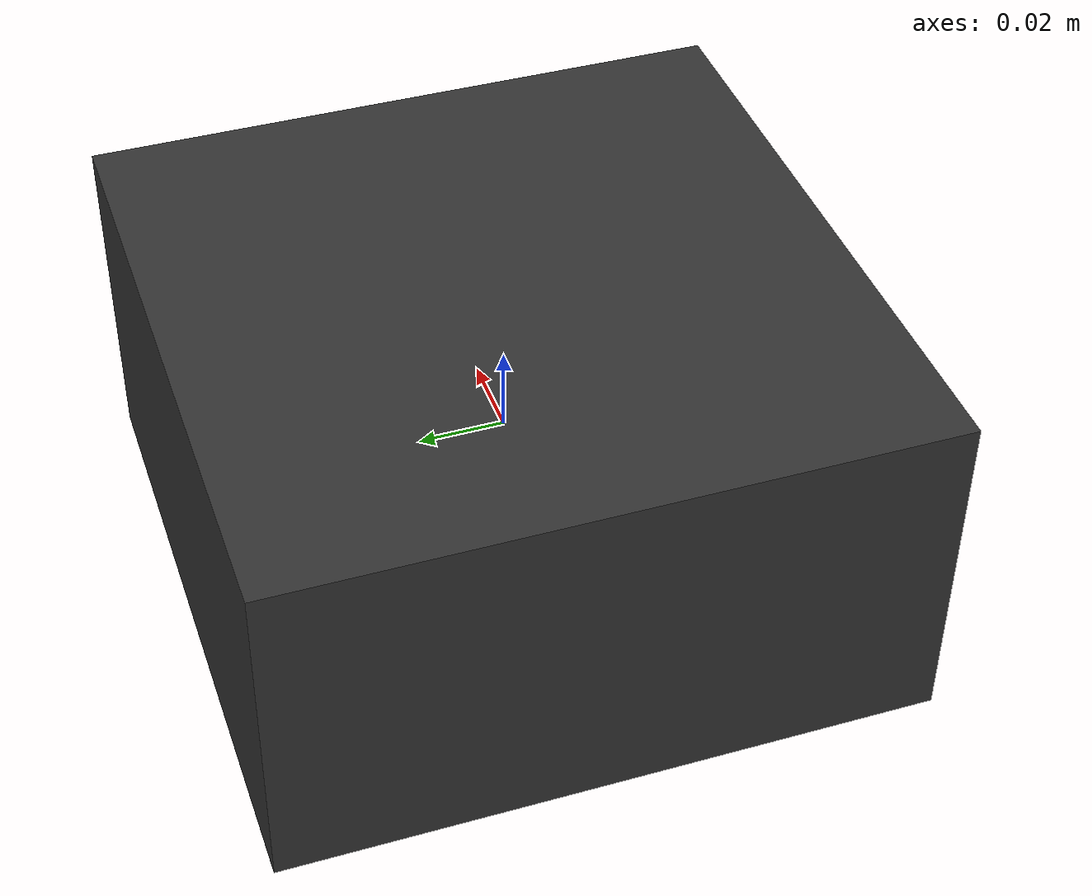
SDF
<?xml version="1.0" ?>
<sdf version="1.8">
  <model name="endurance_quadcopter">
    <!-- Base Link: Represents the central avionics, battery, and flight controller -->
    <link name="base_link">
      <inertial>
        <!-- Mathematically calculated for a 1.50kg AUW 6-inch drone -->
        <mass>1.50</mass>
        <inertia>
          <ixx>0.0034</ixx>
          <iyy>0.0034</iyy>
          <izz>0.0060</izz>
          <ixy>0</ixy>
          <ixz>0</ixz>
          <iyz>0</iyz>
        </inertia>
      </inertial>

      <visual name="base_visual">
        <geometry>
          <box><size>0.15 0.15 0.08</size></box>
        </geometry>
        <material><ambient>0.2 0.2 0.2 1</ambient></material>
      </visual>

      <collision name="base_collision">
        <geometry>
          <box><size>0.15 0.15 0.08</size></box>
        </geometry>
      </collision>

      <!-- Virtual Pi Camera V2 attached to the front of the drone -->
      <sensor name="camera" type="camera">
        <pose>0.1 0 0.02 0 0 0</pose>
        <always_on>1</always_on>
        <update_rate>30</update_rate>
        <camera>
          <horizontal_fov>1.085</horizontal_fov> <!-- ~62 degrees FOV -->
          <image>
            <width>640</width>
            <height>480</height>
            <format>R8G8B8</format>
          </image>
          <clip>
            <near>0.1</near>
            <far>100</far>
          </clip>
        </camera>
        <!-- Bridges camera frames to ROS 2 topic via ros_gz_bridge -->
        <topic>/camera/image_raw</topic>
      </sensor>

      <!-- Virtual IMU for ArduPilot EKF3 -->
      <sensor name="imu_sensor" type="imu">
        <always_on>1</always_on>
        <update_rate>400</update_rate>
      </sensor>
    </link>

    <!-- ArduPilot Lockstep Plugin -->
    <!-- This intercepts physics from Gazebo and routes them to ArduPilot SITL -->
    <plugin filename="libArduPilotPlugin.so" name="ardupilot_gazebo::ArduPilotPlugin">
      <fdm_addr>127.0.0.1</fdm_addr>
      <fdm_port_in>9002</fdm_port_in>
      <fdm_port_out>9003</fdm_port_out>
      <modelXYZToAirplaneXForwardZDown>0 0 0 3.141593 0 0</modelXYZToAirplaneXForwardZDown>
      <gazeboXYZToNED>0 0 0 3.141593 0 0</gazeboXYZToNED>

      <!-- Motor mappings for ArduPilot Quad X configuration -->
      <control channel="0"><type>VELOCITY</type><offset>0</offset><p_gain>0.2</p_gain><multiplier>838</multiplier></control>
      <control channel="1"><type>VELOCITY</type><offset>0</offset><p_gain>0.2</p_gain><multiplier>838</multiplier></control>
      <control channel="2"><type>VELOCITY</type><offset>0</offset><p_gain>0.2</p_gain><multiplier>838</multiplier></control>
      <control channel="3"><type>VELOCITY</type><offset>0</offset><p_gain>0.2</p_gain><multiplier>838</multiplier></control>
    </plugin>
  </model>
</sdf>
